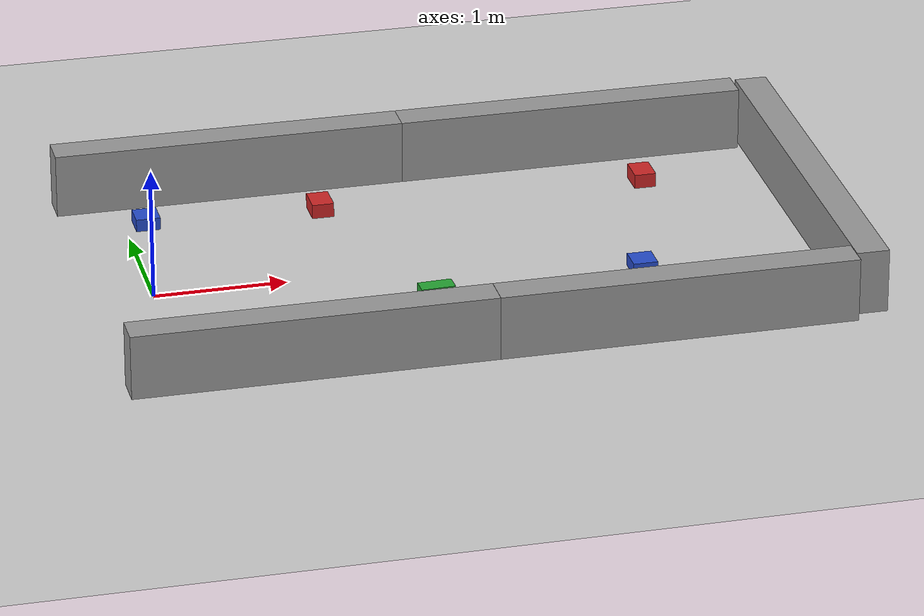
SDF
<sdf version="1.6">
 <world name="default">
  <scene><ambient>0.4 0.4 0.4 1</ambient><background>0.7 0.7 0.7 1</background><shadows>1</shadows></scene>
  <light name="sun" type="directional">
   <pose>0 0 10 0 -0 0</pose>
   <diffuse>0.8 0.8 0.8 1</diffuse>
   <specular>0.2 0.2 0.2 1</specular>
   <attenuation>
    <range>1000</range>
    <constant>0.9</constant>
    <linear>0.01</linear>
    <quadratic>0.001</quadratic>
   </attenuation>
   <direction>-0.5 0.1 -0.9</direction>
  </light>
  <model name="ground_plane">
   <static>1</static>
   <link name="link">
    <collision name="collision">
     <geometry><plane><normal>0 0 1</normal><size>100 100</size></plane></geometry>
     <surface><friction><ode><mu>100</mu><mu2>50</mu2></ode></friction></surface>
    </collision>
    <visual name="visual">
     <cast_shadows>0</cast_shadows>
     <geometry><plane><normal>0 0 1</normal><size>100 100</size></plane></geometry>
     <material>
      <script><uri>file://media/materials/scripts/gazebo.material</uri><name>Gazebo/Grey</name></script>
     </material>
    </visual>
   </link>
  </model>
  <physics name="default_physics" default="0" type="ode">
   <real_time_update_rate>1000</real_time_update_rate>
   <max_step_size>0.001</max_step_size>
   <real_time_factor>1</real_time_factor>
   <ode>
    <solver>
     <type>quick</type>
     <iters>150</iters>
     <precon_iters>0</precon_iters>
     <sor>1.4</sor>
     <use_dynamic_moi_rescaling>1</use_dynamic_moi_rescaling>
    </solver>
    <constraints>
     <cfm>1e-05</cfm>
     <erp>0.2</erp>
     <contact_max_correcting_vel>2000</contact_max_correcting_vel>
     <contact_surface_layer>0.01</contact_surface_layer>
    </constraints>
   </ode>
  </physics>
  <gravity>0 0 -9.8</gravity>
  <magnetic_field>6e-06 2.3e-05 -4.2e-05</magnetic_field>
  <atmosphere type="adiabatic"/>
  <spherical_coordinates>
   <surface_model>EARTH_WGS84</surface_model>
   <latitude_deg>0</latitude_deg>
   <longitude_deg>0</longitude_deg>
   <elevation>0</elevation>
   <heading_deg>0</heading_deg>
  </spherical_coordinates>
  <model name="unit_box">
   <pose>1.49433 1.14427 0.055147 0 -3e-06 0</pose>
   <link name="link">
    <inertial>
     <mass>1</mass>
     <inertia>
      <ixx>0.166667</ixx>
      <ixy>0</ixy>
      <ixz>0</ixz>
      <iyy>0.166667</iyy>
      <iyz>0</iyz>
      <izz>0.166667</izz>
     </inertia>
    </inertial>
    <collision name="collision">
     <geometry><box><size>0.166408 0.223452 0.110295</size></box></geometry>
    </collision>
    <visual name="visual">
     <geometry><box><size>0.166408 0.223452 0.110295</size></box></geometry>
     <material>
      <script><name>Gazebo/Red</name><uri>file://media/materials/scripts/gazebo.material</uri></script>
     </material>
    </visual>
   </link>
  </model>
  <model name="unit_box_clone">
   <pose>0.581376 -1.02548 0.05047 0 2e-06 -1.53024</pose>
   <link name="link">
    <inertial>
     <mass>1</mass>
     <inertia>
      <ixx>0.166667</ixx>
      <ixy>0</ixy>
      <ixz>0</ixz>
      <iyy>0.166667</iyy>
      <iyz>0</iyz>
      <izz>0.166667</izz>
     </inertia>
    </inertial>
    <collision name="collision">
     <geometry><box><size>0.127553 0.256871 0.100941</size></box></geometry>
    </collision>
    <visual name="visual">
     <geometry><box><size>0.127553 0.256871 0.100941</size></box></geometry>
     <material>
      <script><name>Gazebo/Green</name><uri>file://media/materials/scripts/gazebo.material</uri></script>
     </material>
    </visual>
   </link>
  </model>
  <model name="unit_box_clone_0">
   <pose>0.167327 1.2135 0.048199 0 -3e-06 0</pose>
   <link name="link">
    <inertial>
     <mass>1</mass>
     <inertia>
      <ixx>0.166667</ixx>
      <ixy>0</ixy>
      <ixz>0</ixz>
      <iyy>0.166667</iyy>
      <iyz>0</iyz>
      <izz>0.166667</izz>
     </inertia>
    </inertial>
    <collision name="collision">
     <geometry><box><size>0.184715 0.191005 0.0963989</size></box></geometry>
    </collision>
    <visual name="visual">
     <geometry><box><size>0.184715 0.191005 0.0963989</size></box></geometry>
     <material>
      <script><name>Gazebo/Blue</name><uri>file://media/materials/scripts/gazebo.material</uri></script>
     </material>
    </visual>
   </link>
  </model>
  <model name="unit_box_0">
   <pose>0.882426 1.65257 0.244255 0 0.000125 2e-06</pose>
   <link name="link">
    <inertial>
     <mass>1</mass>
     <inertia>
      <ixx>0.166667</ixx>
      <ixy>0</ixy>
      <ixz>0</ixz>
      <iyy>0.166667</iyy>
      <iyz>0</iyz>
      <izz>0.166667</izz>
     </inertia>
    </inertial>
    <collision name="collision"><geometry><box><size>2.68209 0.246847 0.488847</size></box></geometry></collision>
    <visual name="visual">
     <geometry><box><size>2.68209 0.246847 0.488847</size></box></geometry>
     <material>
      <script><name>Gazebo/Grey</name><uri>file://media/materials/scripts/gazebo.material</uri></script>
     </material>
    </visual>
   </link>
  </model>
  <model name="unit_box_0_clone">
   <pose>0.880153 -1.47862 0.244255 0 0.000125 -2e-06</pose>
   <link name="link">
    <inertial>
     <mass>1</mass>
     <inertia>
      <ixx>0.166667</ixx>
      <ixy>0</ixy>
      <ixz>0</ixz>
      <iyy>0.166667</iyy>
      <iyz>0</iyz>
      <izz>0.166667</izz>
     </inertia>
    </inertial>
    <collision name="collision"><geometry><box><size>2.6821 0.246847 0.488847</size></box></geometry></collision>
    <visual name="visual">
     <geometry><box><size>2.6821 0.246847 0.488847</size></box></geometry>
     <material>
      <script><name>Gazebo/Grey</name><uri>file://media/materials/scripts/gazebo.material</uri></script>
     </material>
    </visual>
   </link>
  </model>
  <model name="unit_box_0_clone_clone">
   <pose>3.56294 -1.47989 0.244255 0 0.000125 -2e-06</pose>
   <link name="link">
    <inertial>
     <mass>1</mass>
     <inertia>
      <ixx>0.166667</ixx>
      <ixy>0</ixy>
      <ixz>0</ixz>
      <iyy>0.166667</iyy>
      <iyz>0</iyz>
      <izz>0.166667</izz>
     </inertia>
    </inertial>
    <collision name="collision"><geometry><box><size>2.6821 0.246847 0.488847</size></box></geometry></collision>
    <visual name="visual">
     <geometry><box><size>2.6821 0.246847 0.488847</size></box></geometry>
     <material>
      <script><name>Gazebo/Grey</name><uri>file://media/materials/scripts/gazebo.material</uri></script>
     </material>
    </visual>
   </link>
  </model>
  <model name="unit_box_0_clone_clone_clone">
   <pose>3.56451 1.65215 0.244255 0 -0.000125 2e-06</pose>
   <link name="link">
    <inertial>
     <mass>1</mass>
     <inertia>
      <ixx>0.166667</ixx>
      <ixy>0</ixy>
      <ixz>0</ixz>
      <iyy>0.166667</iyy>
      <iyz>0</iyz>
      <izz>0.166667</izz>
     </inertia>
    </inertial>
    <collision name="collision"><geometry><box><size>2.6821 0.246847 0.488847</size></box></geometry></collision>
    <visual name="visual">
     <geometry><box><size>2.6821 0.246847 0.488847</size></box></geometry>
     <material>
      <script><name>Gazebo/Grey</name><uri>file://media/materials/scripts/gazebo.material</uri></script>
     </material>
    </visual>
   </link>
  </model>
  <model name="unit_box_0_clone_clone_clone_0">
   <pose>5.04453 0.116026 0.244025 0 0.000247 1.56275</pose>
   <link name="link">
    <inertial>
     <mass>1</mass>
     <inertia>
      <ixx>0.166667</ixx>
      <ixy>0</ixy>
      <ixz>0</ixz>
      <iyy>0.166667</iyy>
      <iyz>0</iyz>
      <izz>0.166667</izz>
     </inertia>
    </inertial>
    <collision name="collision"><geometry><box><size>3.23185 0.246847 0.488847</size></box></geometry></collision>
    <visual name="visual">
     <geometry><box><size>3.23185 0.246847 0.488847</size></box></geometry>
     <material>
      <script><name>Gazebo/Grey</name><uri>file://media/materials/scripts/gazebo.material</uri></script>
     </material>
    </visual>
   </link>
  </model>
  <model name="unit_box_clone_1">
   <pose>3.56646 -1.06511 0.055147 0 3e-06 0</pose>
   <link name="link">
    <inertial>
     <mass>1</mass>
     <inertia>
      <ixx>0.166667</ixx>
      <ixy>0</ixy>
      <ixz>0</ixz>
      <iyy>0.166667</iyy>
      <iyz>0</iyz>
      <izz>0.166667</izz>
     </inertia>
    </inertial>
    <collision name="collision">
     <geometry><box><size>0.166408 0.223452 0.110295</size></box></geometry>
    </collision>
    <visual name="visual">
     <geometry><box><size>0.166408 0.223452 0.110295</size></box></geometry>
     <material>
      <script><name>Gazebo/Red</name><uri>file://media/materials/scripts/gazebo.material</uri></script>
     </material>
    </visual>
   </link>
  </model>
  <model name="unit_box_clone_2">
   <pose>4.00914 1.09423 0.055148 0 -6e-06 0</pose>
   <link name="link">
    <inertial>
     <mass>1</mass>
     <inertia>
      <ixx>0.166667</ixx>
      <ixy>0</ixy>
      <ixz>0</ixz>
      <iyy>0.166667</iyy>
      <iyz>0</iyz>
      <izz>0.166667</izz>
     </inertia>
    </inertial>
    <collision name="collision">
     <geometry><box><size>0.166408 0.223452 0.110295</size></box></geometry>
    </collision>
    <visual name="visual">
     <geometry><box><size>0.166408 0.223452 0.110295</size></box></geometry>
     <material>
      <script><name>Gazebo/Red</name><uri>file://media/materials/scripts/gazebo.material</uri></script>
     </material>
    </visual>
   </link>
  </model>
  <model name="unit_box_clone_clone">
   <pose>2.01167 -0.499016 0.050471 0 5e-06 -1.53024</pose>
   <link name="link">
    <inertial>
     <mass>1</mass>
     <inertia>
      <ixx>0.166667</ixx>
      <ixy>0</ixy>
      <ixz>0</ixz>
      <iyy>0.166667</iyy>
      <iyz>0</iyz>
      <izz>0.166667</izz>
     </inertia>
    </inertial>
    <collision name="collision">
     <geometry><box><size>0.127553 0.256871 0.100941</size></box></geometry>
    </collision>
    <visual name="visual">
     <geometry><box><size>0.127553 0.256871 0.100941</size></box></geometry>
     <material>
      <script><name>Gazebo/Green</name><uri>file://media/materials/scripts/gazebo.material</uri></script>
     </material>
    </visual>
   </link>
  </model>
  <model name="unit_box_clone_0_clone">
   <pose>3.60179 -0.406679 0.048199 0 -3e-06 0</pose>
   <link name="link">
    <inertial>
     <mass>1</mass>
     <inertia>
      <ixx>0.166667</ixx>
      <ixy>0</ixy>
      <ixz>0</ixz>
      <iyy>0.166667</iyy>
      <iyz>0</iyz>
      <izz>0.166667</izz>
     </inertia>
    </inertial>
    <collision name="collision">
     <geometry><box><size>0.184715 0.191005 0.096399</size></box></geometry>
    </collision>
    <visual name="visual">
     <geometry><box><size>0.184715 0.191005 0.096399</size></box></geometry>
     <material>
      <script><name>Gazebo/Blue</name><uri>file://media/materials/scripts/gazebo.material</uri></script>
     </material>
    </visual>
   </link>
  </model>
 </world>
</sdf>
